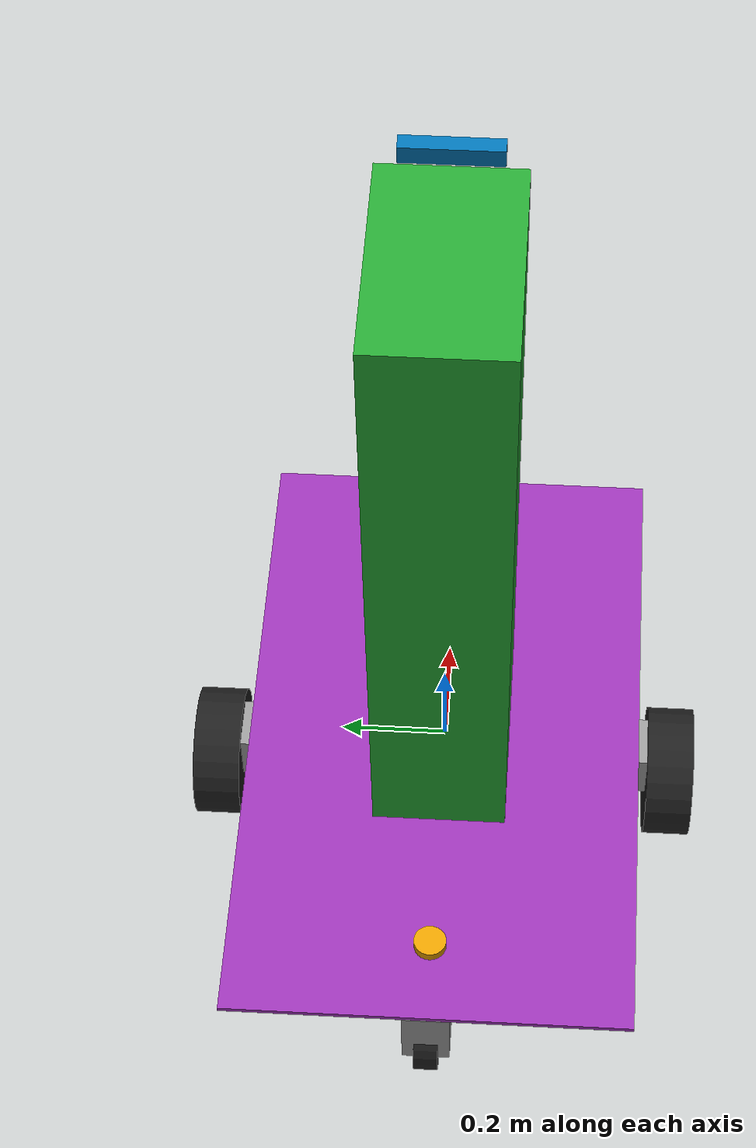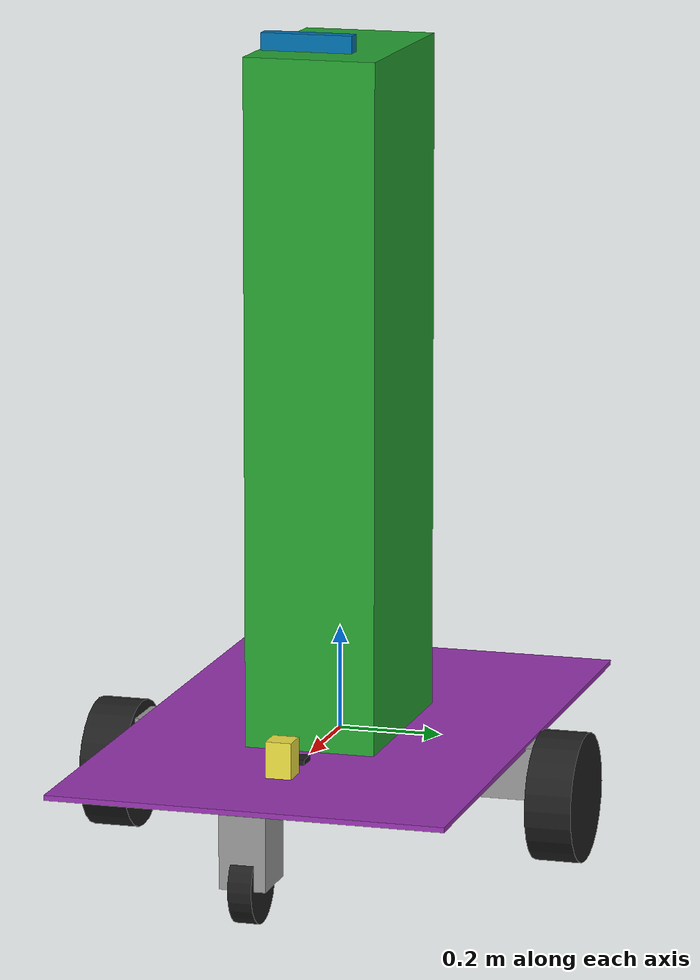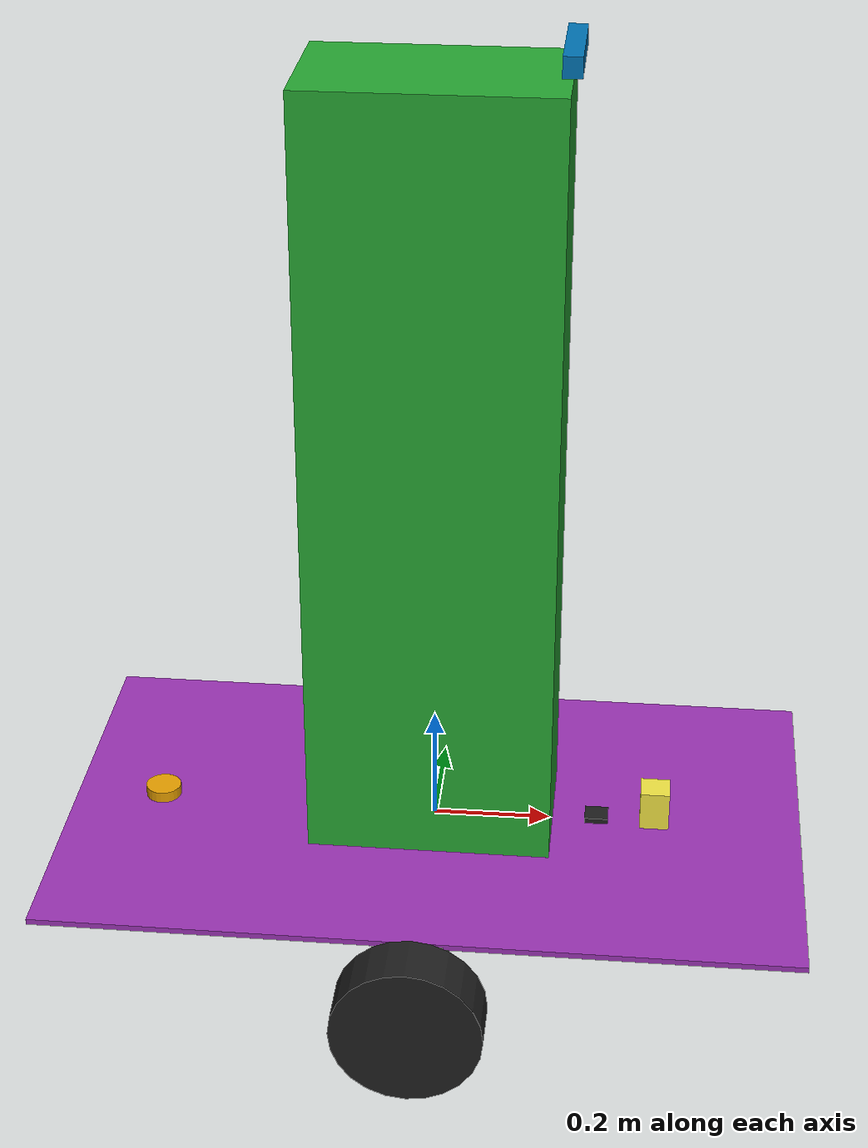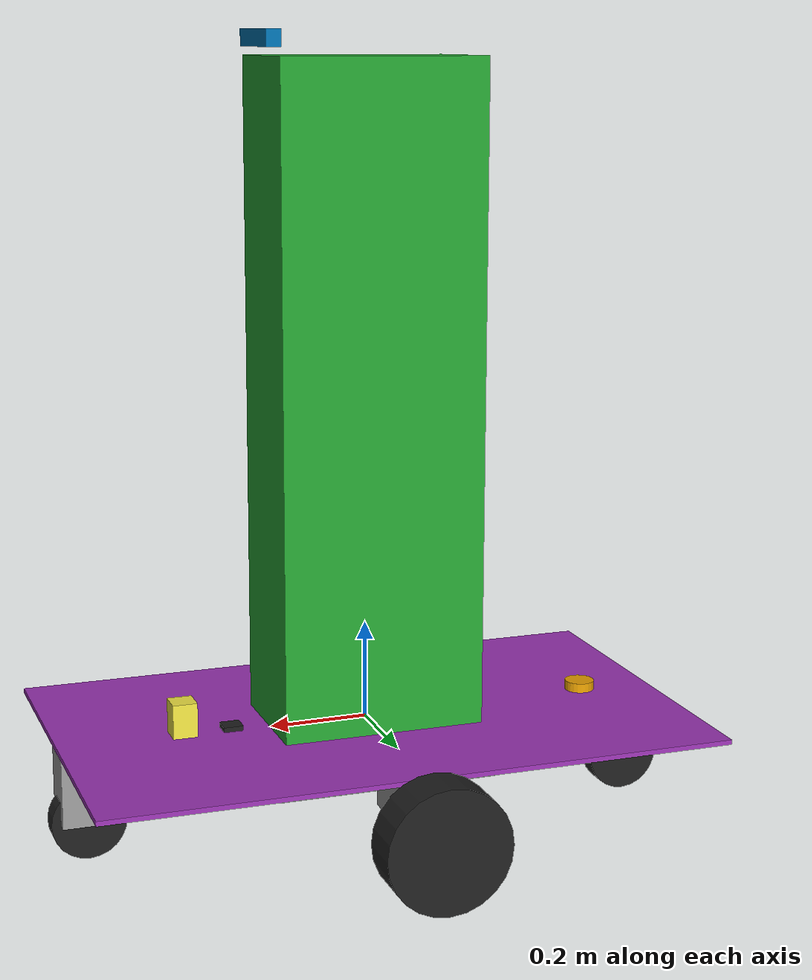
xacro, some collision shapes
<?xml version="1.0"?>
<robot name="caffeine" xmlns:xacro="http://ros.org/wiki/xacro">
   <xacro:include filename="$(find caffeine)/urdf/inertias.xacro"/>
   <xacro:include filename="$(find caffeine)/urdf/caffeine.gazebo.xacro"/>
   <xacro:include filename="$(find caffeine)/urdf/constants.xacro"/>

   <!-- xacro macro definitions for caster wheels -->
   <xacro:macro name="caster_wheel_link_description">
      <visual>
         <origin rpy="${pi/2} 0 0" xyz="0 0 0"/>
         <geometry>
            <cylinder length="${caster_wheel_length}" radius="${caster_wheel_diam/2.0}"/>
         </geometry>
      </visual>
      <collision>
         <origin rpy="${pi/2} 0 0" xyz="0 0 0"/>
         <geometry>
            <cylinder length="${caster_wheel_length}" radius="${caster_wheel_diam/2.0}"/>
         </geometry>
      </collision>
      <inertial>
        <mass value="${caster_wheel_mass}"/>
        <xacro:cylinder_inertia mass="${caster_wheel_mass}" length="${caster_wheel_length}" radius="${caster_wheel_diam/2}"/>
      </inertial>
   </xacro:macro>

   <!-- xacro macro for side wheels -->
   <xacro:macro name="wheel_link_description">
      <visual>
         <origin rpy="${pi/2} 0 0" xyz="0 0 0"/>
         <geometry>
            <cylinder length="${wheel_length}" radius="${wheel_diam/2.0}"/>
         </geometry>
      </visual>
      <collision>
         <origin rpy="${pi/2} 0 0" xyz="0 0 0"/>
         <geometry>
            <cylinder length="${wheel_length}" radius="${wheel_diam/2.0}"/>
         </geometry>
      </collision>
      <inertial>
        <mass value="${wheel_mass}"/>
        <xacro:cylinder_inertia mass="${wheel_mass}" length="${wheel_length}" radius="${wheel_diam/2}"/>
      </inertial>
   </xacro:macro>

   <!-- Wheel motor definitions -->
   <xacro:macro name="Transmission" params="joint">
      <transmission name="trans_${joint}">
         <type>transmission_interface/SimpleTransmission</type>
         <joint name="${joint}">
            <hardwareInterface>hardware_interface/EffortJointInterface</hardwareInterface>
            <mechanicalReduction>1</mechanicalReduction>
         </joint>
         <actuator name="${joint}_motor">
            <hardwareInterface>hardware_interface/EffortJointInterface</hardwareInterface>
         </actuator>
      </transmission>
   </xacro:macro>

   <!-- Base link -->
   <link name="base_link">
      <visual>
         <origin rpy="0 0 0" xyz="0 0 0"/>
         <geometry>
            <box size="${base_length} ${base_width} ${base_height}"/>
         </geometry>
      </visual>
      <collision>
         <origin rpy="0 0 0" xyz="0 0 0"/>
         <geometry>
             <box size="${base_length} ${base_width} ${base_height}"/>
         </geometry>
      </collision>
      <inertial>
         <mass value="${base_mass}"/>
         <xacro:box_inertia mass="${base_mass}" length="${base_length}" width="${base_width}" height="${base_height}"/>
      </inertial>
   </link>

   <!-- Front caster -->
   <link name="front_caster">
      <visual>
         <origin rpy="0 0 0" xyz="0 0 ${-caster_height/2.0}"/>
         <geometry>
            <box size="${caster_length} ${caster_width} ${caster_height}"/>
         </geometry>
      </visual>
      <collision>
         <origin rpy="0 0 0" xyz="0 0 ${-caster_height/2.0}"/>
         <geometry>
            <box size="${caster_length} ${caster_width} ${caster_height}"/>
         </geometry>
      </collision>
      <inertial>
         <mass value="${caster_mass}"/>
         <xacro:box_inertia mass="${caster_mass}" length="${caster_length}" width="${caster_width}" height="${caster_height}"/>
      </inertial>
   </link>
   <joint name="front_caster_joint" type="continuous">
      <axis xyz="0 0 1"/>
      <parent link="base_link"/>
      <child link="front_caster"/>
      <origin rpy="0 0 0" xyz="${caster_x} 0 ${caster_z}"/>
   </joint>

   <!-- Back caster -->
   <link name="back_caster">
      <visual>
         <origin rpy="0 0 0" xyz="0 0 ${-caster_height/2.0}"/>
         <geometry>
            <box size="${caster_length} ${caster_width} ${caster_height}"/>
         </geometry>
      </visual>
      <collision>
         <origin rpy="0 0 0" xyz="0 0 ${-caster_height/2.0}"/>
         <geometry>
            <box size="${caster_length} ${caster_width} ${caster_height}"/>
         </geometry>
      </collision>
      <inertial>
         <mass value="${caster_mass}"/>
         <xacro:box_inertia mass="${caster_mass}" length="${caster_length}" width="${caster_width}" height="${caster_height}"/>
      </inertial>
   </link>
   <joint name="back_caster_joint" type="continuous">
      <axis xyz="0 0 1"/>
      <parent link="base_link"/>
      <child link="back_caster"/>
      <origin rpy="0 0 0" xyz="${-caster_x} 0 ${caster_z}"/>
   </joint>

   <!-- Front caster wheel -->
   <link name="front_caster_wheel">
      <xacro:caster_wheel_link_description />
   </link>
   <joint name="front_caster_wheel_joint" type="continuous">
      <axis xyz="0 0 1"/>
      <parent link="front_caster"/>
      <child link="front_caster_wheel"/>
      <origin rpy="0 0 0" xyz="0 0 ${caster_wheel_z}"/>
   </joint>

   <!-- Back caster wheel -->
   <link name="back_caster_wheel">
      <xacro:caster_wheel_link_description />
   </link>
   <joint name="back_caster_wheel_joint" type="continuous">
      <axis xyz="0 0 1"/>
      <parent link="back_caster"/>
      <child link="back_caster_wheel"/>
      <origin rpy="0 0 0" xyz="0 0 ${caster_wheel_z}"/>
   </joint>

   <!-- Basement -->
   <link name="basement">
      <visual>
         <origin rpy="0 0 0" xyz="0 0 ${-basement_height/2.0}"/>
         <geometry>
            <box size="${basement_length} ${basement_width} ${basement_height}"/>
         </geometry>
      </visual>
      <collision>
         <origin rpy="0 0 0" xyz="0 0 0"/>
         <geometry>
            <box size="${basement_length} ${basement_width} ${basement_height}"/>
         </geometry>
      </collision>
      <inertial>
         <mass value="${basement_mass}"/>
         <xacro:box_inertia mass="${basement_mass}" length="${basement_length}" width="${basement_width}" height="${basement_height}"/>
      </inertial>

   </link>
   <joint name="basement_joint" type="fixed">
      <parent link="base_link"/>
      <child link="basement"/>
   </joint>

   <!-- Right side motor housing -->
   <link name="right_motor_gearbox_housing">
      <visual>
         <origin rpy="0 0 0" xyz="0 0 ${-gearbox_height/2.0}"/>
         <geometry>
            <box size="${gearbox_length} ${gearbox_width} ${gearbox_height}"/>
         </geometry>
      </visual>
      <collision>
         <origin rpy="0 0 0" xyz="0 0 0"/>
         <geometry>
            <box size="${gearbox_length} ${gearbox_width} ${gearbox_height}"/>
         </geometry>
      </collision>
      <inertial>
         <mass value="${gearbox_mass}"/>
         <xacro:box_inertia mass="${gearbox_mass}" length="${gearbox_length}" width="${gearbox_width}" height="${gearbox_height}"/>
      </inertial>
   </link>
   <joint name="right_motor_gearbox_housing_joint" type="fixed">
      <parent link="base_link"/>
      <child link="right_motor_gearbox_housing"/>
      <origin rpy="0 0 0" xyz="0 ${base_length/4.0} 0"/>
   </joint>

   <!-- Left side motor housing -->
   <link name="left_motor_gearbox_housing">
      <visual>
         <origin rpy="0 0 0" xyz="0 0 ${-gearbox_height/2.0}"/>
         <geometry>
            <box size="${gearbox_length} ${gearbox_width} ${gearbox_height}"/>
         </geometry>
      </visual>
      <collision>
         <origin rpy="0 0 0" xyz="0 0 0"/>
         <geometry>
            <box size="${gearbox_length} ${gearbox_width} ${gearbox_height}"/>
         </geometry>
      </collision>
      <inertial>
         <mass value="${gearbox_mass}"/>
         <xacro:box_inertia mass="${gearbox_mass}" length="${gearbox_length}" width="${gearbox_width}" height="${gearbox_height}"/>
      </inertial>
   </link>
   <joint name="left_motor_gearbox_housing_joint" type="fixed">
      <parent link="base_link"/>
      <child link="left_motor_gearbox_housing"/>
      <origin rpy="0 0 0" xyz="0 ${-base_length/4.0} 0"/>
   </joint>

   <!-- Right wheel -->
   <link name="right_wheel">
      <xacro:wheel_link_description />
   </link>
   <joint name="right_wheel_joint" type="continuous">
      <axis xyz="0 1 0"/>
      <parent link="right_motor_gearbox_housing"/>
      <child link="right_wheel"/>
      <origin rpy="0 0 0" xyz="0 ${gearbox_width/1.5} ${-gearbox_height}"/>
   </joint>
   <xacro:Transmission joint="right_wheel_joint"/>

   <!-- Left wheel -->
   <link name="left_wheel">
      <xacro:wheel_link_description />
   </link>
   <joint name="left_wheel_joint" type="continuous">
      <axis xyz="0 1 0"/>
      <parent link="left_motor_gearbox_housing"/>
      <child link="left_wheel"/>
      <origin rpy="0 0 0" xyz="0 ${-gearbox_width/1.5} ${-gearbox_height}"/>
   </joint>
   <xacro:Transmission joint="left_wheel_joint"/>

   <link name="stand">
      <visual>
         <origin rpy="0 0 0" xyz="0 0 ${stand_height/2.0}"/>
         <geometry>
            <box size="${stand_length} ${stand_width} ${stand_height}"/>
         </geometry>
      </visual>
      <collision>
         <origin rpy="0 0 0" xyz="0 0 ${stand_height/2.0}"/>
         <geometry>
            <box size="${stand_length} ${stand_width} ${stand_height}"/>
         </geometry>
      </collision>
      <inertial>
         <mass value="${stand_mass}"/>
         <xacro:box_inertia mass="${stand_mass}" length="${stand_length}" width="${stand_width}" height="${stand_height}"/>
      </inertial>
   </link>
   <joint name="stand_joint" type="fixed">
      <parent link="base_link"/>
      <child link="stand"/>
      <origin rpy="0 0 0" xyz="0 0 0"/>
   </joint>

   <!-- LIDAR -->
   <link name="base_laser">
      <inertial>
         <mass value="${hokuyo_mass}"/>
         <xacro:box_inertia mass="${hokuyo_mass}" length="${hokuyo_length}" width="${hokuyo_width}" height="${hokuyo_height}"/>
      </inertial>

      <visual>
         <origin xyz="0 0 0" rpy="0 0 0"/>
         <geometry>
            <mesh filename="package://caffeine/urdf/meshes/hokuyo.dae"/>
         </geometry>
      </visual>

      <collision>
         <origin xyz="0 0 0" rpy="0 0 0"/>
         <geometry>
            <box size="${hokuyo_length} ${hokuyo_width} ${hokuyo_height}"/>
         </geometry>
      </collision>
   </link>

   <!-- LIDAR: attach base_laser to base_link -->
   <joint name="base_laser_joint" type="fixed">
      <parent link="base_link"/>
      <child link="base_laser"/>
      <origin xyz="${base_width / 2.0} 0 ${base_height / 2.0 + hokuyo_height / 2.0}" rpy="0 0 0"/>
   </joint>

   <!-- ZED Camera -->
  <link name="zed_camera_link">
      <visual>
         <origin xyz="0 0 0" rpy="0 0 0"/>
            <!-- TODO: should be using the mesh but couldn't get it to work -->
         <geometry>
            <box size="${ZED_camera_width} ${ZED_camera_length} ${ZED_camera_height}"/>
         </geometry>
       </visual>
       <collision>
           <origin xyz="0 0 0" rpy="0 0 0"/>
           <geometry>
               <box size="${ZED_camera_width} ${ZED_camera_length} ${ZED_camera_height}"/>
           </geometry>
       </collision>
       <inertial>
           <mass value="${ZED_camera_mass}"/>
           <xacro:box_inertia mass="${ZED_camera_mass}" length="${ZED_camera_length}" width="${ZED_camera_width}" height="${ZED_camera_height}"/>
       </inertial>
   </link>
   <joint name="zed_camera_joint" type="fixed">
       <parent link="stand"/>
       <child link="zed_camera_link"/>
       <origin xyz="${stand_length/2} 0 ${stand_height + ZED_camera_height}" rpy="0 0 0"/>
   </joint>

   <!-- ZED camera lenses -->
   <!-- NOTE: I'm only defining one and not visually showing any-->
   <!-- I only need one for purposes of using the plugin -->
   <!-- TODO: check if it's fine to call the left lense camera_link (rtabmap doesn't specify whether it wants the lense frame or the camera frame itself) -->
   <link name="camera_link">
       <!-- Inertial tag here to ensure that link does not phase through robot-->
       <inertial>
            <mass value="0.0001"/>
            <inertia ixx="0.0001" ixy="0" ixz="0" iyy="0.0001" iyz="0" izz="0.00001"/>
       </inertial>
   </link>
   <joint name="camera_link_joint" type="fixed">
       <origin xyz="${ZED_camera_length/2.0} 0 0" rpy="0 0 0"/>
       <parent link="zed_camera_link"/>
       <child link="camera_link"/>
   </joint>

   <!-- Generate an optical frame http://www.ros.org/reps/rep-0103.html#suffix-frames so that ros and opencv can operate on the camera frame correctly -->
   <link name="zed_camera_link_optical">
   </link>
   <joint name="zed_camera_link_optical_joint" type="fixed">
       <!-- Transform b/w standard and optical frame -->
       <origin xyz="0 0 0" rpy="${-pi/2} 0 ${-pi/2}"/>
       <parent link="zed_camera_link"/>
       <child link="zed_camera_link_optical"/>
   </joint>

   <!-- IMU -->
   <link name="imu_link">
      <inertial>
         <mass value="${phidget_mass}"/>
         <xacro:box_inertia mass="${phidget_mass}" length="${phidget_length}" width="${phidget_width}" height="${phidget_height}"/>
      </inertial>

      <visual>
         <origin xyz="0 0 0" rpy="0 0 0"/>
         <geometry>
            <box size="${phidget_length} ${phidget_width} ${phidget_height}"/>
         </geometry>
      </visual>

      <collision>
         <origin xyz="0 0 0" rpy="0 0 0"/>
         <geometry>
            <box size="${phidget_length} ${phidget_width} ${phidget_height}"/>
         </geometry>
      </collision>
   </link>

   <!-- IMU: attach imu_link to base_link -->
   <joint name="base_link_to_imu_link" type="fixed">
      <parent link="base_link"/>
      <child link="imu_link"/>
      <origin xyz="${base_width / 2.0 - 0.1} 0 ${base_height / 2.0 + phidget_height / 2.0}" rpy="0 0 0"/>
   </joint>

  <!-- GPS -->
  <link name="gps_link">
      <inertial>
          <mass value="${gps_mass}"/>
          <xacro:cylinder_inertia mass="${gps_mass}" length="${gps_length}" radius="${gps_diam / 2.0}"/>
      </inertial>

      <visual>
          <origin xyz="0 0 0" rpy="0 0 0"/>
          <geometry>
              <cylinder length="${gps_length}" radius="${gps_diam / 2.0}"/>
          </geometry>
      </visual>
      <collision>
          <origin xyz="0 0 0" rpy="0 0 0"/>
          <geometry>
              <cylinder length="${gps_length}" radius="${gps_diam / 2.0}"/>
          </geometry>
      </collision>
  </link>

  <!-- GPS: attach gps_link to base_link -->
  <joint name="gps_joint" type="fixed">
      <parent link="base_link"/>
      <child link="gps_link"/>
      <origin xyz="${-base_width / 2.0 - 0.1} 0 ${base_height / 2.0 + gps_length / 2.0}" rpy="0 0 0"/>
  </joint>

</robot>

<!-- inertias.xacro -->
<robot name="inertias" xmlns:xacro="http://ros.org/wiki/xacro">
    <xacro:macro name="box_inertia" params="mass length width height">
        <inertia
            ixx="${mass * (height*height + length*length)/12.0}"
                        ixy="0.0"
            ixz="0.0"
                        iyy="${mass * (width*width + length*length)/12.0}"
                        iyz="0.0"
            izz="${mass * (width*width + height*height)/12.0}"
        />

    </xacro:macro>

    <xacro:macro name="cylinder_inertia" params="mass length radius">
        <inertia
            ixx="${mass * (3*radius*radius + length*length)/12.0}"
            ixy="0.0"
            ixz="0.0"
                        iyy="${mass * (3*radius*radius + length*length)/12.0}"
            iyz="0.0"
            izz="${0.5*mass*radius*radius}"
        />
    </xacro:macro>

    <!-- Chassis link inertia -->
    <xacro:macro name="chassis_link_inertia">
        <inertia
            ixx="1.0" ixy="0.0" ixz="0.0"
            iyy="1.0" iyz="0.0" izz="1.0"
        />
    </xacro:macro>

    <!-- Side wheel inertia -->
    <xacro:macro name="wheel_inertia">
        <inertia
            ixx="1.0" ixy="0.0" ixz="0.0"
            iyy="1.0" iyz="0.0" izz="1.0"
        />
    </xacro:macro>

    <!-- Caster support inertia -->
    <xacro:macro name="caster_inertia">
        <inertia
            ixx="1.0" ixy="0.0" ixz="0.0"
            iyy="1.0" iyz="0.0" izz="1.0"
        />
    </xacro:macro>

    <!-- Caster wheel inertia -->
    <xacro:macro name="caster_wheel_inertia">
        <inertia
            ixx="1.0" ixy="0.0" ixz="0.0"
            iyy="1.0" iyz="0.0" izz="1.0"
        />
    </xacro:macro>

</robot>

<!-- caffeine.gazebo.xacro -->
<robot name="caffeine_sim" xmlns:xacro="http://ros.org/wiki/xacro">
   <xacro:include filename="$(find caffeine)/urdf/constants.xacro"/>

   <gazebo reference="base_link">
      <material>Gazebo/Purple</material>
   </gazebo>

   <gazebo reference="front_caster">
      <material>Gazebo/Grey</material>
   </gazebo>

   <gazebo reference="back_caster">
      <material>Gazebo/Grey</material>
   </gazebo>

   <gazebo reference="front_caster_wheel">
      <material>Gazebo/Black</material>
   </gazebo>

   <gazebo reference="back_caster_wheel">
      <material>Gazebo/Black</material>
   </gazebo>

   <gazebo reference="basement">
      <material>Gazebo/Grey</material>
   </gazebo>

   <gazebo reference="right_motor_gearbox_housing">
      <material>Gazebo/Grey</material>
   </gazebo>

   <gazebo reference="left_motor_gearbox_housing">
      <material>Gazebo/Grey</material>
   </gazebo>

   <gazebo reference="left_wheel">
      <material>Gazebo/Black</material>
   </gazebo>

   <gazebo reference="right_wheel">
      <material>Gazebo/Black</material>
   </gazebo>

   <gazebo reference="stand">
      <material>Gazebo/Green</material>
   </gazebo>

   <gazebo>
      <plugin name="caffeine_controller" filename="libgazebo_ros_diff_drive.so">
         <alwaysOn>true</alwaysOn>
         <updateRate>30.0</updateRate>
         <legacyMode>true</legacyMode>
         <leftJoint>left_wheel_joint</leftJoint>
         <rightJoint>right_wheel_joint</rightJoint>
         <wheelSeparation>0.764</wheelSeparation>
         <wheelDiameter>0.25</wheelDiameter>
         <robotBaseFrame>base_link</robotBaseFrame>
         <torque>20</torque>
         <topicName>cmd_vel</topicName>
         <odometryTopic>odom</odometryTopic>
         <odometryFrame>odom</odometryFrame>
         <odometrySource>world</odometrySource>
         <publishOdomTF>true</publishOdomTF>
         <publishWheelJointState>true</publishWheelJointState>
         <broadcastTF>true</broadcastTF>
      </plugin>
   </gazebo>

   <!-- IMPORTANT: Double check the numbers I'm using here with our actual sensor-->
   <gazebo reference="base_laser">
      <sensor type="ray" name="hokuyo_sensor">
         <pose>0 0 0 0 0 0</pose>
         <visualize>false</visualize>
         <update_rate>30</update_rate>
         <ray>
            <scan>
               <horizontal>
                  <samples>1080</samples>
                  <resolution>1</resolution>
                  <min_angle>0.0</min_angle>
                  <max_angle>4.71</max_angle>
               </horizontal>
            </scan>
            <range>
               <min>0.1</min>
               <max>5.6</max>
               <resolution>0.01</resolution>
            </range>
            <noise>
               <type>gaussian</type>
               <mean>0.0</mean>
               <stddev>0.01</stddev>
            </noise>
         </ray>
         <plugin name="gazebo_ros_hokuyo_controller" filename="libgazebo_ros_laser.so">
            <topicName>/scan</topicName>
            <frameName>base_laser</frameName>
         </plugin>
      </sensor>
   </gazebo>

   <!-- TODO: double check these numbers -->
   <gazebo reference="camera_link">
      <sensor type="multicamera" name="stereo_camera">
         <update_rate>30.0</update_rate>
         <camera name="left">
            <horizontal_fov>1.571</horizontal_fov>
            <image>
               <width>1280</width>
               <height>720</height>
               <format>R8G8B8</format>
            </image>
            <clip>
               <near>0.02</near>
               <far>300</far>
            </clip>
         </camera>
         <camera name="right">
            <pose>0 ${-ZED_camera_length} 0 0 0 0</pose>
            <horizontal_fov>1.571</horizontal_fov>
            <image>
               <width>1280</width>
               <height>720</height>
               <format>R8G8B8</format>
            </image>
            <clip>
               <near>0.02</near>
               <far>300</far>
            </clip>
         </camera>
         <plugin name="stereo_camera_controller" filename="libgazebo_ros_multicamera.so">
            <cameraName>zed/zed_node</cameraName>
            <alwaysOn>true</alwaysOn>
            <updateRate>0</updateRate>
            <cameraName></cameraName>
            <imageTopicName>image_raw</imageTopicName>
            <cameraInfoTopicName>camera_info</cameraInfoTopicName>
            <depthImageTopicName>depth/image_raw</depthImageTopicName>
            <depthImageInfoTopicName>depth/camera_info</depthImageInfoTopicName>
            <pointCloudTopicName>depth/points</pointCloudTopicName>
            <frameName>zed_camera_link_optical</frameName>
            <hackBaseline>${ZED_camera_length}</hackBaseline>
            <distortionK1>0.0</distortionK1>
            <distortionK2>0.0</distortionK2>
            <distortionK3>0.0</distortionK3>
            <distortionT1>0.0</distortionT1>
            <distortionT2>0.0</distortionT2>
         </plugin>
      </sensor>
   </gazebo>

   <!-- Phidgets IMU specifications -->
   <gazebo reference="imu_link">
      <material>Gazebo/Black</material>

      <gravity>true</gravity>
      <sensor name="imu_sensor" type="imu">
         <always_on>true</always_on>
         <update_rate>128</update_rate>
         <visualize>true</visualize>
         <topic>imu/data</topic>

         <plugin filename="libgazebo_ros_imu_sensor.so" name="imu_plugin">
            <topicName>imu/data</topicName>
            <bodyName>imu_link</bodyName>
            <updateRateHZ>128.0</updateRateHZ>
            <gaussianNoise>0.0</gaussianNoise>
            <xyzOffset>0 0 0</xyzOffset>
            <rpyOffset>0 0 0</rpyOffset>
            <frameName>imu_link</frameName>
         </plugin>

         <pose>0 0 0 0 0 0</pose>
      </sensor>
  </gazebo>

   <!-- For details about plugin, see: http://wiki.ros.org/hector_gazebo_plugins -->
   <!-- TODO: update these parameters to match real life Garmin. See: http://static.garmin.com/pumac/425_TechnicalSpecification.pdf -->
   <gazebo>
      <plugin name="gps_controller" filename="libhector_gazebo_ros_gps.so">
         <updateRate>5.0</updateRate>  <!-- 5 Hz -->
         <bodyName>gps_link</bodyName>
         <frameId>gps_link</frameId>
         <topicName>fix</topicName>
         <velocityTopicName>fix_velocity</velocityTopicName>
         <!-- Set reference GPS coordinates to UofT -->
         <referenceLatitude>43.6570</referenceLatitude>
         <referenceLongitude>-79.3903</referenceLongitude>
         <referenceAltitude>76</referenceAltitude>
         <!-- Model GPS behaviour -->
         <service>1</service> <!-- SERVICE_GPS = 1 -->
         <drift>1.5 1.5 1.5</drift>
         <velocityDrift>0.05 0.05 0.05</velocityDrift>
         <!-- TODO: add Gaussian noise based off Garmin GPS -->
      </plugin>
   </gazebo>

   <gazebo>
      <plugin name="gazebo_ros_control" filename="libgazebo_ros_control.so">
         <legacyModeNS>true</legacyModeNS>
      </plugin>
   </gazebo>

</robot>

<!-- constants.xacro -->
<robot name="constants" xmlns:xacro="http://ros.org/wiki/xacro">
   <!-- Constants for drivebase -->
   <xacro:property name="base_length" value="1.268"/>
   <xacro:property name="base_width" value="0.764"/>
   <xacro:property name="base_height" value="0.01"/>
   <xacro:property name="base_mass" value="39.091"/>

   <!-- Constants for caster wheels -->
   <xacro:property name="caster_wheel_diam" value="0.15"/>
   <xacro:property name="caster_wheel_length" value="0.045"/>
   <xacro:property name="caster_wheel_mass" value="1.0"/>
   <xacro:property name="caster_wheel_z" value="-0.141"/>

   <!-- Constants for side wheels -->
   <xacro:property name="wheel_diam" value="0.25"/>
   <xacro:property name="wheel_length" value="0.09"/>
   <xacro:property name="wheel_mass" value="1.0"/>

   <!-- Constants for casters -->
   <xacro:property name="caster_length" value="0.113"/>
   <xacro:property name="caster_width" value="0.089"/>
   <xacro:property name="caster_height" value="0.141"/>
   <xacro:property name="caster_x" value="0.578"/>
   <xacro:property name="caster_z" value="-0.005"/>
   <xacro:property name="caster_mass" value="1.0"/>

   <!-- Constants for hokuyo sensor -->
   <xacro:property name="hokuyo_length" value="0.05"/>
   <xacro:property name="hokuyo_width" value="0.05"/>
   <xacro:property name="hokuyo_height" value="0.07"/>
   <xacro:property name="hokuyo_mass" value="0.16"/>

   <!-- Constants for Phidget IMU -->
   <xacro:property name="phidget_length" value="0.04"/>
   <xacro:property name="phidget_width" value="0.0375"/>
   <xacro:property name="phidget_height" value="0.01"/>
   <xacro:property name="phidget_mass" value="0.04"/>

   <!-- Constants for the basement -->
   <xacro:property name="basement_height" value="0.103"/>
   <xacro:property name="basement_width" value="0.305"/>
   <xacro:property name="basement_length" value="0.456"/>
   <xacro:property name="basement_mass" value="1.0"/>

   <!-- Constants for the motor gearbox housing -->
   <xacro:property name="gearbox_height" value="0.102"/>
   <xacro:property name="gearbox_width" value="0.191"/>
   <xacro:property name="gearbox_length" value="0.101"/>
   <xacro:property name="gearbox_mass" value="0.1"/>

  <!-- Constants for the stands -->
  <xacro:property name="stand_length" value="0.412"/>
  <xacro:property name="stand_width" value="0.254"/>
  <xacro:property name="stand_height" value="1.324"/>
  <xacro:property name="stand_mass" value="1.0"/>

  <!-- Constants for ZED camera -->
  <!-- NOTE: approx as a rectangular prism -->
  <xacro:property name="ZED_camera_mass" value="0.1587573"/>
  <xacro:property name="ZED_camera_length" value="0.175"/>
  <xacro:property name="ZED_camera_width" value="0.03"/>
  <xacro:property name="ZED_camera_height" value="0.033"/>

  <!-- Constants for Garmin GPS -->
  <!-- NOTE: approx as a cylinder; garmin itself is similar to a hockey puck -->
  <xacro:property name="gps_diam" value="0.061"/>
  <xacro:property name="gps_length" value="0.0195"/>
  <xacro:property name="gps_mass" value="0.165"/>

</robot>
